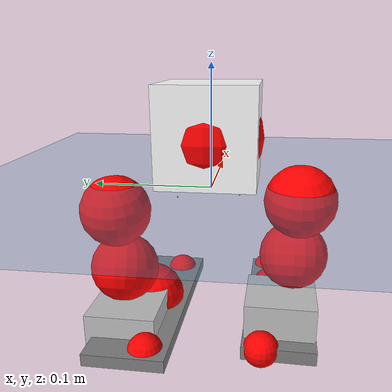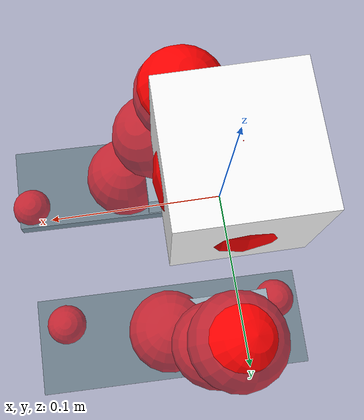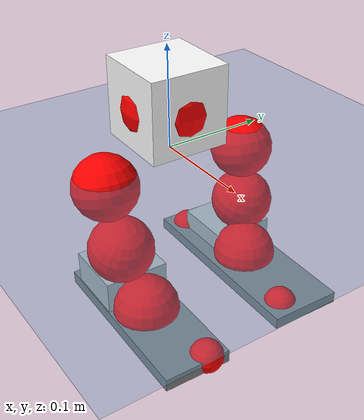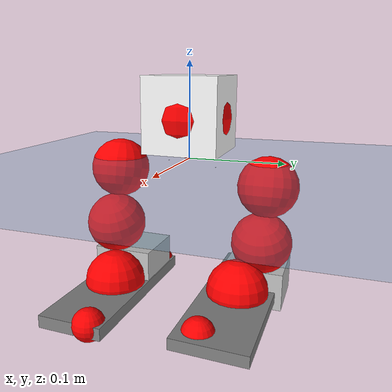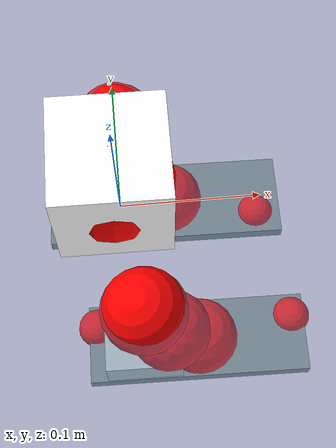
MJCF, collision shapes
<mujoco model="pi_12dof_release_v1">
  <compiler angle="radian" assetdir="assets" balanceinertia="true" inertiafromgeom="false"/>

  <option timestep="0.005" density="1.2" viscosity="2e-05"/>

  <size nkey="1"/>

  <visual>
    <quality shadowsize="8192"/>
    <map shadowclip="0.5"/>
  </visual>

  <default>
    <default class="/">
      <joint armature="0.01" damping="0.01" frictionloss="0.01"/>
      <geom contype="0" conaffinity="0" group="1" solref="-1000 -80"/>
      <site size="0.01 0.005 0.005" group="5"/>
      <general forcelimited="true" biastype="affine" gainprm="20" biasprm="0 -20 -0.5"/>
      <default class="foot">
        <geom size="0.0845 0.036 0.005" type="box" condim="6" group="4" priority="1" friction="0.9 0.2 0.2" solimp="0.015 1 0.005"/>
      </default>
      <default class="reward_collision_sphere">
        <geom group="5" rgba="1 0 0 1"/>
      </default>
    </default>
  </default>

  <asset>
    <texture type="skybox" colorspace="auto" name="//unnamed_texture_0" builtin="gradient" rgb1="0.95 0.95 0.95" rgb2="0.95 0.95 0.95" width="100" height="600"/>
    <texture type="2d" colorspace="auto" name="texplane" builtin="checker" rgb1="0.345 0.575 0.748" rgb2="0.345 0.575 0.748" markrgb="1 1 1" width="512" height="512"/>
    <material name="MatPlane" class="/" texture="texplane" texuniform="true" texrepeat="2 2" specular="0.9"/>
    <mesh name="baselink_1" class="/" file="baselink_1.STL"/>
    <mesh name="r_hip_pitch_link" class="/" file="r_hip_pitch_link.STL"/>
    <mesh name="r_hip_roll_link" class="/" file="r_hip_roll_link.STL"/>
    <mesh name="r_thigh_link" class="/" file="r_thigh_link.STL"/>
    <mesh name="r_calf_link" class="/" file="r_calf_link.STL"/>
    <mesh name="r_ankle_pitch_link" class="/" file="r_ankle_pitch_link.STL"/>
    <mesh name="r_ankle_roll_link" class="/" file="r_ankle_roll_link.STL"/>
    <mesh name="l_hip_pitch_link" class="/" file="l_hip_pitch_link.STL"/>
    <mesh name="l_hip_roll_link" class="/" file="l_hip_roll_link.STL"/>
    <mesh name="l_thigh_link" class="/" file="l_thigh_link.STL"/>
    <mesh name="l_calf_link" class="/" file="l_calf_link.STL"/>
    <mesh name="l_ankle_pitch_link" class="/" file="l_ankle_pitch_link.STL"/>
    <mesh name="l_ankle_roll_link" class="/" file="l_ankle_roll_link.STL"/>
  </asset>

  <worldbody>
    <geom name="floor" class="/" size="100 100 0.125" type="plane" group="0" material="MatPlane"/>
    <light name="toplight_shadow" class="/" pos="0 0 5" dir="0.0990148 0.0990148 -0.990148" type="directional" ambient="0.04 0.04 0.04" diffuse="0.55 0.55 0.55" specular="0.12 0.12 0.12"/>
    <light name="toplight_fill" class="/" pos="0 0 5" dir="0.0990148 0.0990148 -0.990148" type="directional" castshadow="false" ambient="0.04 0.04 0.04" diffuse="0.3 0.3 0.3" specular="0.08 0.08 0.08"/>
    <body name="trunk" pos="-0.00326088 5.63242e-05 0.0156493" quat="0.999973 -0.00292587 0.00470584 -0.00477427">
      <inertial pos="0.000484447 -0.0128346 0.0178658" quat="0.662411 0.045094 0.0540968 0.745823" mass="0.925599" diaginertia="0.0198922 0.00180809 2.75214e-05"/>
      <joint name="//unnamed_joint_0" type="free"/>
      <geom name="//unnamed_geom_1" class="/" type="mesh" density="0" rgba="1 1 1 1" mesh="baselink_1"/>
      <geom name="//unnamed_geom_2" class="/" size="0.0388882 0.0388882 0.0388882" pos="0 0 0.0308081" type="box" rgba="1 1 1 1"/>
      <geom name="//unnamed_geom_3" class="reward_collision_sphere" size="0.042777" pos="0 0 0.026957"/>
      <site name="imu" class="/" pos="-0.0219385 -0.0485141 0.0610643" size="0.00777764"/>
      <camera name="track" class="/" pos="0 -1.50155 0" quat="0.707107 0.707107 0 0" mode="trackcom"/>
      <camera name="ego_camera" class="/" pos="0.0898062 0 0.0693181" quat="-0.5 -0.5 0.5 0.5"/>
      <body name="r_hip_pitch_link" pos="-0.000432391 -0.0241502 -0.020055" quat="0.992256 0.000738897 -0.124209 0.000274422">
        <inertial pos="0.015172 -0.0414691 0.0150903" quat="0.0250002 0.740708 0.00996594 0.671288" mass="0.192794" diaginertia="0.000255689 2.81035e-05 7.80051e-07"/>
        <joint name="r_hip_pitch_joint" class="/" pos="0 0 0" axis="-0.035268 -0.999365 0.00515191" stiffness="0.00179198" range="-1.83598 1.35908" armature="0.00705022" damping="0.00917805" frictionloss="0.00625729"/>
        <geom name="//unnamed_geom_4" class="/" type="mesh" density="0" rgba="0.75294 0.75294 0.75294 1" mesh="r_hip_pitch_link"/>
        <geom name="//unnamed_geom_5" class="/" size="0.000388882 0.000388882 0.000388882" type="box" rgba="0.75294 0.75294 0.75294 1"/>
        <body name="r_hip_roll_link" pos="0.0128429 -0.0506168 -0.0120203" quat="1 -1.65478e-06 -4.38638e-05 8.754e-06">
          <inertial pos="-0.000204438 -0.000127566 -0.0215932" quat="0.689262 -0.0777112 -0.105518 0.712562" mass="0.200233" diaginertia="0.000906249 7.77417e-05 1.47179e-06"/>
          <joint name="r_hip_roll_joint" class="/" pos="0 0 0" axis="-0.998387 0.040513 0.0397738" stiffness="0.00399214" range="-0.0988312 0.502539" armature="0.0140048" damping="0.00374017" frictionloss="0.00388687"/>
          <geom name="//unnamed_geom_6" class="/" type="mesh" density="0" rgba="0.75294 0.75294 0.75294 1" mesh="r_hip_roll_link"/>
          <geom name="//unnamed_geom_7" class="/" size="0.000388882 0.000388882 0.000388882" type="box" rgba="0.75294 0.75294 0.75294 1"/>
          <geom name="//unnamed_geom_8" class="reward_collision_sphere" size="0.0311106"/>
          <body name="r_thigh_link" pos="-0.00578304 0.00107545 -0.0270615" quat="1 0.000252242 -6.01839e-05 -0.000371093">
            <inertial pos="0.0168133 0.0158413 -0.0183674" quat="0.737198 0.675627 -0.00808796 0.00108745" mass="0.0537635" diaginertia="0.000368894 2.21727e-05 4.98789e-07"/>
            <joint name="r_thigh_joint" class="/" pos="0 0 0" axis="-0.00645562 0.0180522 -0.999816" range="-0.128024 0.333997" armature="0.0132836" damping="0" frictionloss="0.0093405"/>
            <geom name="//unnamed_geom_9" class="/" type="mesh" density="0" rgba="0.75294 0.75294 0.75294 1" mesh="r_thigh_link"/>
            <geom name="//unnamed_geom_10" class="/" size="0.000388882 0.000388882 0.000388882" type="box" rgba="0.75294 0.75294 0.75294 1"/>
            <body name="r_calf_link" pos="0.00940642 0.00141817 -0.0325363" quat="0.948906 0.00258014 0.315483 -0.00645415">
              <inertial pos="0.00700014 -0.000523676 -0.0252712" quat="0.996456 -0.00612262 0.0123726 0.0829746" mass="0.33066" diaginertia="0.00885484 0.000909065 1.52296e-06"/>
              <joint name="r_calf_joint" class="/" pos="0 0 0" axis="-0.0179331 -0.999609 -0.0214553" stiffness="0.030326" range="-1.64422 0.467549" armature="0.00796367" damping="0.00857485" frictionloss="0.00678613"/>
              <geom name="//unnamed_geom_11" class="/" type="mesh" density="0" rgba="0.75294 0.75294 0.75294 1" mesh="r_calf_link"/>
              <geom name="//unnamed_geom_12" class="/" size="0.000388882 0.000388882 0.000388882" type="box" rgba="0.75294 0.75294 0.75294 1"/>
              <geom name="//unnamed_geom_13" class="reward_collision_sphere" size="0.0311106"/>
              <body name="r_ankle_pitch_link" pos="-0.000739099 0.0097469 -0.0518113" quat="0.979353 -0.00186058 -0.202148 -0.000280354">
                <inertial pos="0.0140451 0.00203221 0.00639595" quat="-0.0011658 0.686498 -0.00155936 0.727129" mass="0.0696046" diaginertia="0.000736591 6.06327e-05 9.04937e-07"/>
                <joint name="r_ankle_pitch_joint" class="/" pos="0 0 0" axis="0.0338674 -0.998666 -0.0389649" range="-1.11325 0.51231" armature="0.0105591" damping="0" frictionloss="0.00628986"/>
                <geom name="//unnamed_geom_14" class="/" type="mesh" density="0" rgba="0.75294 0.75294 0.75294 1" mesh="r_ankle_pitch_link"/>
                <geom name="//unnamed_geom_15" class="/" size="0.0303328 0.0311106 0.0194441" type="box" rgba="0.75294 0.75294 0.75294 1"/>
                <body name="r_ankle_roll_link" pos="0.105474 -0.000207467 -0.000400482" quat="0.999997 0.00128229 -0.00135007 -0.00141191">
                  <inertial pos="-0.0230782 0.0144356 -0.0179836" quat="0.495052 0.464186 0.429627 0.595714" mass="0.301862" diaginertia="0.00336889 0.000240796 3.19656e-06"/>
                  <joint name="r_ankle_roll_joint" class="/" pos="0 0 0" axis="-0.999981 0.00599995 0.00123546" range="0.181084 -0.0438552" armature="0.0130425" damping="0.0437555" frictionloss="0.0135182"/>
                  <geom name="//unnamed_geom_16" class="/" type="mesh" density="0" rgba="0.75294 0.75294 0.75294 1" mesh="r_ankle_roll_link"/>
                  <geom name="//unnamed_geom_17" class="/" type="mesh" rgba="0.75294 0.75294 0.75294 1" mesh="r_ankle_roll_link"/>
                  <geom name="right_foot" class="foot" size="0.0891094 0.0320755 0.0061262" pos="-0.0610682 0 -0.0169444"/>
                  <geom name="//unnamed_geom_19" class="reward_collision_sphere" size="0.0311106" pos="-0.0598708 0 -0.00770201"/>
                  <geom name="//unnamed_geom_20" class="reward_collision_sphere" size="0.0155553" pos="0.0179612 0.0150155 -0.015404"/>
                  <geom name="//unnamed_geom_21" class="reward_collision_sphere" size="0.0155553" pos="-0.14369 0.0150155 -0.015404"/>
                  <site name="right_foot" class="foot" pos="-0.0610682 0 -0.0169444" size="0.00777764"/>
                </body>
              </body>
            </body>
          </body>
        </body>
      </body>
      <body name="l_hip_pitch_link" pos="0.000734463 0.0284353 -0.0239221" quat="0.992011 -0.00241259 -0.126122 0.00131672">
        <inertial pos="0.00720234 0.0549589 0.0156194" quat="-0.0439133 0.711438 0.0643333 0.698419" mass="0.212955" diaginertia="0.000391631 2.54818e-05 1.10012e-06"/>
        <joint name="l_hip_pitch_joint" class="/" pos="0 0 0" axis="-0.0101675 0.99775 0.0662702" stiffness="0.0575841" range="-0.939434 1.93103" armature="0.008078" damping="0.0664687" frictionloss="0.00426348"/>
        <geom name="//unnamed_geom_22" class="/" type="mesh" density="0" rgba="0.75294 0.75294 0.75294 1" mesh="l_hip_pitch_link"/>
        <geom name="//unnamed_geom_23" class="/" size="0.000388882 0.000388882 0.000388882" type="box" rgba="0.75294 0.75294 0.75294 1"/>
        <body name="l_hip_roll_link" pos="-0.000952725 0.0560509 -0.0152875" quat="0.999983 0.00284497 0.00201433 -0.0045945">
          <inertial pos="-0.0189031 0.0117508 -0.0071693" quat="0.699396 -0.0755661 -0.0781906 0.706414" mass="0.147196" diaginertia="0.000528402 4.98892e-05 7.40503e-07"/>
          <joint name="l_hip_roll_joint" class="/" pos="0 0 0" axis="-0.999999 0.000812459 -0.000819637" stiffness="0.0088267" range="-0.493007 0.311059" armature="0.0116684" damping="0" frictionloss="0.00775983"/>
          <geom name="//unnamed_geom_24" class="/" type="mesh" density="0" rgba="0.75294 0.75294 0.75294 1" mesh="l_hip_roll_link"/>
          <geom name="//unnamed_geom_25" class="/" size="0.000388882 0.000388882 0.000388882" type="box" rgba="0.75294 0.75294 0.75294 1"/>
          <geom name="//unnamed_geom_26" class="reward_collision_sphere" size="0.0311106"/>
          <body name="l_thigh_link" pos="0.00991016 -0.000423878 -0.016466" quat="0.999981 0.00246872 -0.00307154 0.00469692">
            <inertial pos="0.0152959 -0.0119349 -0.00240503" quat="0.697111 0.714166 -0.00253126 -0.0632297" mass="0.0592292" diaginertia="0.000354092 2.86275e-05 5.05364e-07"/>
            <joint name="l_thigh_joint" class="/" pos="0 0 0" axis="0.00155341 -0.000518376 -0.999999" stiffness="0.0113844" range="-0.576467 0.364725" armature="0.0104729" damping="0.0319569" frictionloss="0.00153056"/>
            <geom name="//unnamed_geom_27" class="/" type="mesh" density="0" rgba="0.75294 0.75294 0.75294 1" mesh="l_thigh_link"/>
            <geom name="//unnamed_geom_28" class="/" size="0.000388882 0.000388882 0.000388882" type="box" rgba="0.75294 0.75294 0.75294 1"/>
            <body name="l_calf_link" pos="-0.0166242 -0.00240407 -0.0409226" quat="0.947659 3.26351e-05 0.319286 2.20636e-05">
              <inertial pos="0.0129318 0.0128189 -0.0290511" quat="0.997281 -0.0401051 -0.0174205 0.0593265" mass="0.372914" diaginertia="0.00567026 0.000663791 1.05412e-06"/>
              <joint name="l_calf_joint" class="/" pos="0 0 0" axis="-0.0235791 0.998931 -0.0397587" stiffness="0.064767" range="-0.378879 1.36208" armature="0.0059499" damping="0.0604642" frictionloss="0.00370024"/>
              <geom name="//unnamed_geom_29" class="/" type="mesh" density="0" rgba="0.75294 0.75294 0.75294 1" mesh="l_calf_link"/>
              <geom name="//unnamed_geom_30" class="/" size="0.000388882 0.000388882 0.000388882" type="box" rgba="0.75294 0.75294 0.75294 1"/>
              <geom name="//unnamed_geom_31" class="reward_collision_sphere" size="0.0311106"/>
              <body name="l_ankle_pitch_link" pos="0.00315621 -0.00606646 -0.0488032" quat="0.980065 0.000193933 -0.198673 -0.0016195">
                <inertial pos="-0.00211219 0.00849747 0.0139443" quat="0.00704838 0.67799 0.0365409 0.734128" mass="0.107293" diaginertia="0.000679614 5.72428e-05 1.02407e-06"/>
                <joint name="l_ankle_pitch_joint" class="/" pos="0 0 0" axis="0.00303818 0.999988 0.00395343" range="-0.291832 1.2645" armature="0.0112781" damping="0.0860194" frictionloss="0.0125787"/>
                <geom name="//unnamed_geom_32" class="/" type="mesh" density="0" rgba="0.75294 0.75294 0.75294 1" mesh="l_ankle_pitch_link"/>
                <geom name="//unnamed_geom_33" class="/" size="0.0303328 0.0311106 0.0194441" type="box" rgba="0.75294 0.75294 0.75294 1"/>
                <body name="l_ankle_roll_link" pos="0.104859 -0.0119355 0.0115905" quat="0.999965 -0.00382317 -0.00240769 -0.00708207">
                  <inertial pos="-0.0349183 -0.000926682 -0.00553721" quat="0.616447 0.406797 0.401528 0.541558" mass="0.225446" diaginertia="0.00255722 0.000190998 2.48543e-06"/>
                  <joint name="l_ankle_roll_joint" class="/" pos="0 0 0" axis="-0.999982 -0.00226314 -0.00554454" stiffness="0.0243637" range="-0.230111 0.485349" armature="0.00841333" damping="0.0605574" frictionloss="0.0111147"/>
                  <geom name="//unnamed_geom_34" class="/" type="mesh" density="0" rgba="0.75294 0.75294 0.75294 1" mesh="l_ankle_roll_link"/>
                  <geom name="//unnamed_geom_35" class="/" type="mesh" rgba="0.75294 0.75294 0.75294 1" mesh="l_ankle_roll_link"/>
                  <geom name="left_foot" class="foot" size="0.100332 0.0353148 0.00555708" pos="-0.0610682 0 -0.0169444"/>
                  <geom name="//unnamed_geom_37" class="reward_collision_sphere" size="0.0311106" pos="-0.0598708 0 -0.00770201"/>
                  <geom name="//unnamed_geom_38" class="reward_collision_sphere" size="0.0155553" pos="0.0179612 -0.0150155 -0.015404"/>
                  <geom name="//unnamed_geom_39" class="reward_collision_sphere" size="0.0155553" pos="-0.14369 -0.0150155 -0.015404"/>
                  <site name="left_foot" class="foot" pos="-0.0610682 0 -0.0169444" size="0.00777764"/>
                </body>
              </body>
            </body>
          </body>
        </body>
      </body>
    </body>
  </worldbody>

  <contact>
    <pair class="/" geom1="floor" geom2="right_foot" name="//unnamed_contact_1"/>
    <pair class="/" geom1="floor" geom2="left_foot" name="//unnamed_contact_0"/>
  </contact>

  <actuator>
    <general name="r_hip_pitch_joint" class="/" joint="r_hip_pitch_joint" forcerange="-8.09443 8.09443" gainprm="22.0446" biasprm="0 -22.0446 -0.524639"/>
    <general name="r_hip_roll_joint" class="/" joint="r_hip_roll_joint" forcerange="-26.307 26.307" gainprm="22.0446" biasprm="0 -22.0446 -0.524639"/>
    <general name="r_thigh_joint" class="/" joint="r_thigh_joint" forcerange="-16.3369 16.3369" gainprm="22.0446" biasprm="0 -22.0446 -0.524639"/>
    <general name="r_calf_joint" class="/" joint="r_calf_joint" forcerange="-6.07373 6.07373" gainprm="22.0446" biasprm="0 -22.0446 -0.524639"/>
    <general name="r_ankle_pitch_joint" class="/" joint="r_ankle_pitch_joint" forcerange="-21.1837 21.1837" gainprm="22.0446" biasprm="0 -22.0446 -0.524639"/>
    <general name="r_ankle_roll_joint" class="/" joint="r_ankle_roll_joint" forcerange="-26.2168 26.2168" gainprm="22.0446" biasprm="0 -22.0446 -0.524639"/>
    <general name="l_hip_pitch_joint" class="/" joint="l_hip_pitch_joint" forcerange="-16.7641 16.7641" gainprm="22.0446" biasprm="0 -22.0446 -0.524639"/>
    <general name="l_hip_roll_joint" class="/" joint="l_hip_roll_joint" forcerange="-13.7368 13.7368" gainprm="22.0446" biasprm="0 -22.0446 -0.524639"/>
    <general name="l_thigh_joint" class="/" joint="l_thigh_joint" forcerange="-10.5074 10.5074" gainprm="22.0446" biasprm="0 -22.0446 -0.524639"/>
    <general name="l_calf_joint" class="/" joint="l_calf_joint" forcerange="-18.7404 18.7404" gainprm="22.0446" biasprm="0 -22.0446 -0.524639"/>
    <general name="l_ankle_pitch_joint" class="/" joint="l_ankle_pitch_joint" forcerange="-10.6932 10.6932" gainprm="22.0446" biasprm="0 -22.0446 -0.524639"/>
    <general name="l_ankle_roll_joint" class="/" joint="l_ankle_roll_joint" forcerange="-16.4712 16.4712" gainprm="22.0446" biasprm="0 -22.0446 -0.524639"/>
  </actuator>

  <sensor>
    <gyro site="imu" name="imu_angular_velocity"/>
    <velocimeter site="imu" name="imu_linear_velocity"/>
    <framelinvel objtype="site" objname="left_foot" name="left_foot_global_linear_velocity"/>
    <framelinvel objtype="site" objname="right_foot" name="right_foot_global_linear_velocity"/>
  </sensor>

  <keyframe>
    <key name="home" qpos="0 0 0.291 1 0 0 0 0.4 0 0 -0.8 0.4 0 -0.4 0 0 0.8 -0.4 0"/>
  </keyframe>
</mujoco>
